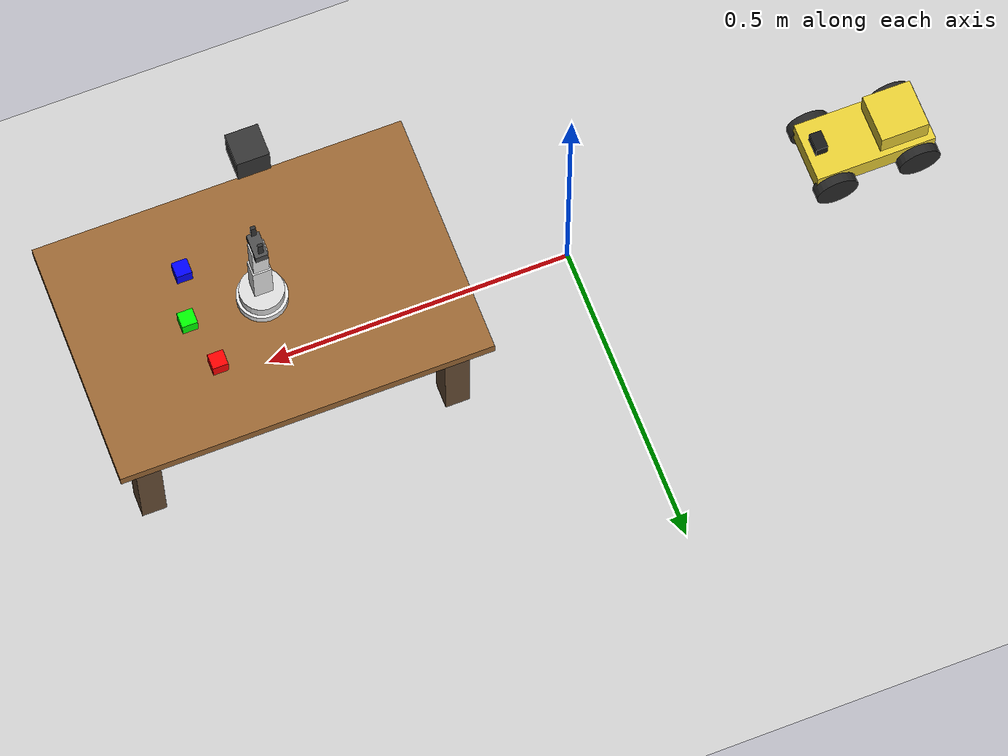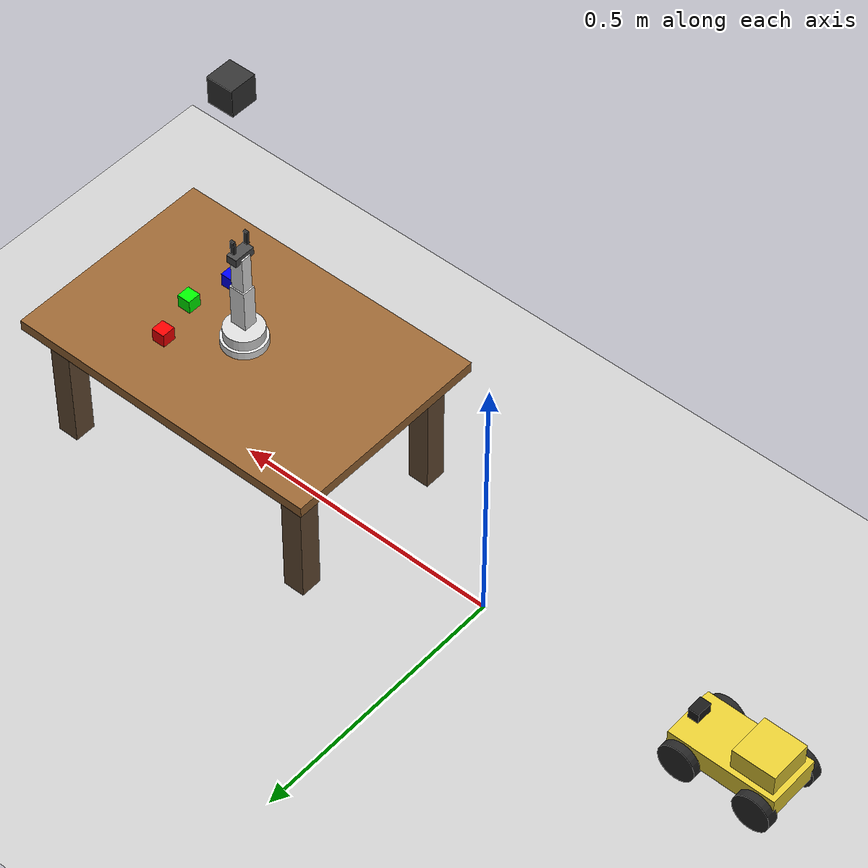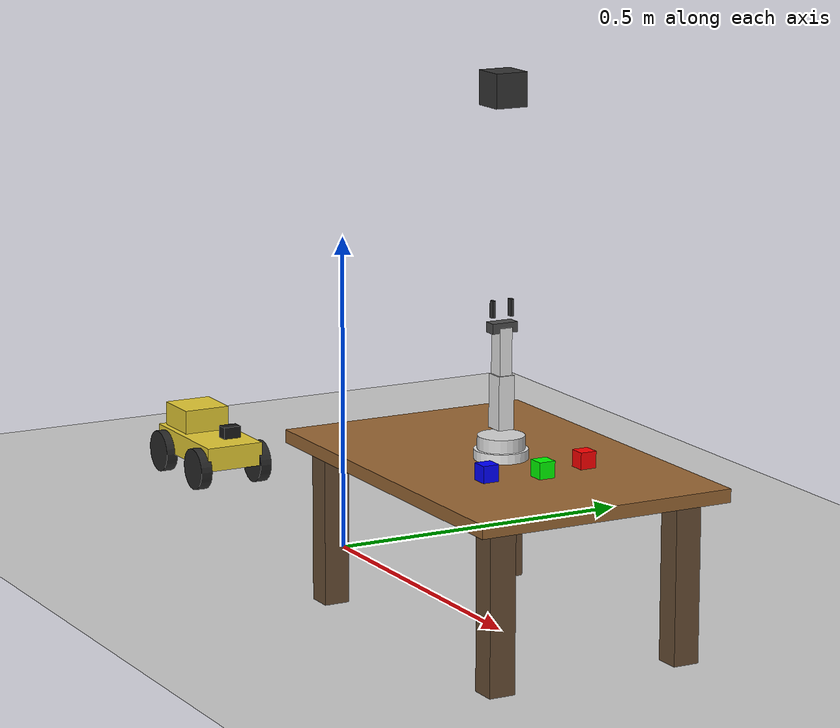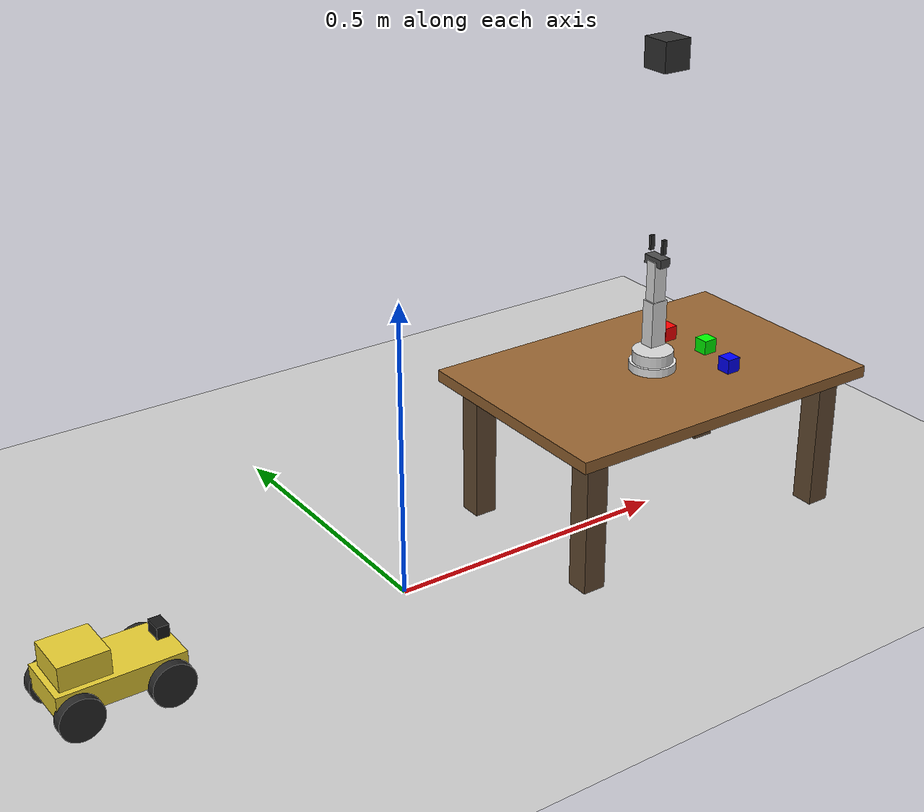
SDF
<?xml version="1.0" ?>
<sdf version="1.8">
  <world name="cyberbrick_world">

    <!-- Physics -->
    <physics name="1ms" type="ignored">
      <max_step_size>0.001</max_step_size>
      <real_time_factor>1.0</real_time_factor>
    </physics>

    <!-- Required plugins for Ignition Gazebo -->
    <plugin filename="ignition-gazebo-physics-system" name="ignition::gazebo::systems::Physics"/>
    <plugin filename="ignition-gazebo-user-commands-system" name="ignition::gazebo::systems::UserCommands"/>
    <plugin filename="ignition-gazebo-scene-broadcaster-system" name="ignition::gazebo::systems::SceneBroadcaster"/>
    <plugin filename="ignition-gazebo-sensors-system" name="ignition::gazebo::systems::Sensors">
      <render_engine>ogre2</render_engine>
    </plugin>

    <!-- Lighting -->
    <light type="directional" name="sun">
      <cast_shadows>true</cast_shadows>
      <pose>0 0 10 0 0 0</pose>
      <diffuse>0.8 0.8 0.8 1</diffuse>
      <specular>0.2 0.2 0.2 1</specular>
      <attenuation>
        <range>1000</range>
        <constant>0.9</constant>
        <linear>0.01</linear>
        <quadratic>0.001</quadratic>
      </attenuation>
      <direction>-0.5 0.1 -0.9</direction>
    </light>

    <!-- Ground plane -->
    <model name="ground_plane">
      <static>true</static>
      <link name="link">
        <collision name="collision">
          <geometry>
            <plane>
              <normal>0 0 1</normal>
              <size>10 10</size>
            </plane>
          </geometry>
        </collision>
        <visual name="visual">
          <geometry>
            <plane>
              <normal>0 0 1</normal>
              <size>10 10</size>
            </plane>
          </geometry>
          <material>
            <ambient>0.8 0.8 0.8 1</ambient>
            <diffuse>0.8 0.8 0.8 1</diffuse>
          </material>
        </visual>
      </link>
    </model>

    <!-- Table for objects -->
    <model name="table">
      <static>true</static>
      <pose>0.5 0 0.25 0 0 0</pose>
      <link name="link">
        <collision name="surface">
          <geometry>
            <box>
              <size>0.6 0.4 0.02</size>
            </box>
          </geometry>
        </collision>
        <visual name="surface">
          <geometry>
            <box>
              <size>0.6 0.4 0.02</size>
            </box>
          </geometry>
          <material>
            <ambient>0.6 0.4 0.2 1</ambient>
            <diffuse>0.6 0.4 0.2 1</diffuse>
          </material>
        </visual>
        <!-- Table legs -->
        <collision name="leg1">
          <pose>0.25 0.15 -0.125 0 0 0</pose>
          <geometry><box><size>0.04 0.04 0.25</size></box></geometry>
        </collision>
        <visual name="leg1">
          <pose>0.25 0.15 -0.125 0 0 0</pose>
          <geometry><box><size>0.04 0.04 0.25</size></box></geometry>
          <material><ambient>0.4 0.3 0.2 1</ambient><diffuse>0.4 0.3 0.2 1</diffuse></material>
        </visual>
        <collision name="leg2">
          <pose>-0.25 0.15 -0.125 0 0 0</pose>
          <geometry><box><size>0.04 0.04 0.25</size></box></geometry>
        </collision>
        <visual name="leg2">
          <pose>-0.25 0.15 -0.125 0 0 0</pose>
          <geometry><box><size>0.04 0.04 0.25</size></box></geometry>
          <material><ambient>0.4 0.3 0.2 1</ambient><diffuse>0.4 0.3 0.2 1</diffuse></material>
        </visual>
        <collision name="leg3">
          <pose>0.25 -0.15 -0.125 0 0 0</pose>
          <geometry><box><size>0.04 0.04 0.25</size></box></geometry>
        </collision>
        <visual name="leg3">
          <pose>0.25 -0.15 -0.125 0 0 0</pose>
          <geometry><box><size>0.04 0.04 0.25</size></box></geometry>
          <material><ambient>0.4 0.3 0.2 1</ambient><diffuse>0.4 0.3 0.2 1</diffuse></material>
        </visual>
        <collision name="leg4">
          <pose>-0.25 -0.15 -0.125 0 0 0</pose>
          <geometry><box><size>0.04 0.04 0.25</size></box></geometry>
        </collision>
        <visual name="leg4">
          <pose>-0.25 -0.15 -0.125 0 0 0</pose>
          <geometry><box><size>0.04 0.04 0.25</size></box></geometry>
          <material><ambient>0.4 0.3 0.2 1</ambient><diffuse>0.4 0.3 0.2 1</diffuse></material>
        </visual>
      </link>
    </model>

    <!-- Red cube (target object) - positioned within arm reach -->
    <model name="red_cube">
      <pose>0.6 0.08 0.2725 0 0 0</pose>
      <link name="link">
        <inertial>
          <mass>0.05</mass>
          <inertia>
            <ixx>0.0001</ixx>
            <iyy>0.0001</iyy>
            <izz>0.0001</izz>
          </inertia>
        </inertial>
        <collision name="collision">
          <geometry>
            <box>
              <size>0.025 0.025 0.025</size>
            </box>
          </geometry>
        </collision>
        <visual name="visual">
          <geometry>
            <box>
              <size>0.025 0.025 0.025</size>
            </box>
          </geometry>
          <material>
            <ambient>1 0 0 1</ambient>
            <diffuse>1 0 0 1</diffuse>
          </material>
        </visual>
      </link>
    </model>

    <!-- Blue cube - positioned within arm reach -->
    <model name="blue_cube">
      <pose>0.6 -0.08 0.2725 0 0 0</pose>
      <link name="link">
        <inertial>
          <mass>0.05</mass>
          <inertia>
            <ixx>0.0001</ixx>
            <iyy>0.0001</iyy>
            <izz>0.0001</izz>
          </inertia>
        </inertial>
        <collision name="collision">
          <geometry>
            <box>
              <size>0.025 0.025 0.025</size>
            </box>
          </geometry>
        </collision>
        <visual name="visual">
          <geometry>
            <box>
              <size>0.025 0.025 0.025</size>
            </box>
          </geometry>
          <material>
            <ambient>0 0 1 1</ambient>
            <diffuse>0 0 1 1</diffuse>
          </material>
        </visual>
      </link>
    </model>

    <!-- Green cube - positioned within arm reach -->
    <model name="green_cube">
      <pose>0.62 0.0 0.2725 0 0 0</pose>
      <link name="link">
        <inertial>
          <mass>0.05</mass>
          <inertia>
            <ixx>0.0001</ixx>
            <iyy>0.0001</iyy>
            <izz>0.0001</izz>
          </inertia>
        </inertial>
        <collision name="collision">
          <geometry>
            <box>
              <size>0.025 0.025 0.025</size>
            </box>
          </geometry>
        </collision>
        <visual name="visual">
          <geometry>
            <box>
              <size>0.025 0.025 0.025</size>
            </box>
          </geometry>
          <material>
            <ambient>0 1 0 1</ambient>
            <diffuse>0 1 0 1</diffuse>
          </material>
        </visual>
      </link>
    </model>

    <!-- L-ONE Robotic Arm (4 DOF + Gripper) -->
    <!-- Based on real L-ONE CyberBrick arm: base rotation + shoulder + elbow + gripper -->
    <model name="l_one_arm">
      <static>false</static>
      <pose>0.5 0 0.26 0 0 0</pose>

      <!-- Base pedestal (fixed to table) -->
      <link name="base_pedestal">
        <inertial>
          <mass>0.3</mass>
          <inertia><ixx>0.0002</ixx><iyy>0.0002</iyy><izz>0.0002</izz></inertia>
        </inertial>
        <collision name="collision">
          <geometry><cylinder><radius>0.04</radius><length>0.03</length></cylinder></geometry>
        </collision>
        <visual name="visual">
          <geometry><cylinder><radius>0.04</radius><length>0.03</length></cylinder></geometry>
          <material><ambient>0.9 0.9 0.9 1</ambient><diffuse>0.9 0.9 0.9 1</diffuse></material>
        </visual>
      </link>

      <!-- Turntable (rotates on base) -->
      <link name="turntable">
        <pose relative_to="base_pedestal">0 0 0.025 0 0 0</pose>
        <inertial>
          <mass>0.15</mass>
          <inertia><ixx>0.0001</ixx><iyy>0.0001</iyy><izz>0.0001</izz></inertia>
        </inertial>
        <collision name="collision">
          <geometry><cylinder><radius>0.035</radius><length>0.02</length></cylinder></geometry>
        </collision>
        <visual name="visual">
          <geometry><cylinder><radius>0.035</radius><length>0.02</length></cylinder></geometry>
          <material><ambient>0.85 0.85 0.85 1</ambient><diffuse>0.85 0.85 0.85 1</diffuse></material>
        </visual>
      </link>

      <!-- Lower arm (shoulder joint) -->
      <link name="lower_arm">
        <pose relative_to="turntable">0 0 0.02 0 0 0</pose>
        <inertial>
          <mass>0.1</mass>
          <inertia><ixx>0.0001</ixx><iyy>0.0001</iyy><izz>0.0001</izz></inertia>
        </inertial>
        <collision name="collision">
          <pose>0 0 0.04 0 0 0</pose>
          <geometry><box><size>0.03 0.025 0.08</size></box></geometry>
        </collision>
        <visual name="visual">
          <pose>0 0 0.04 0 0 0</pose>
          <geometry><box><size>0.03 0.025 0.08</size></box></geometry>
          <material><ambient>0.9 0.9 0.9 1</ambient><diffuse>0.9 0.9 0.9 1</diffuse></material>
        </visual>
      </link>

      <!-- Upper arm (elbow joint) -->
      <link name="upper_arm">
        <pose relative_to="lower_arm">0 0 0.08 0 0 0</pose>
        <inertial>
          <mass>0.08</mass>
          <inertia><ixx>0.00008</ixx><iyy>0.00008</iyy><izz>0.00008</izz></inertia>
        </inertial>
        <collision name="collision">
          <pose>0 0 0.035 0 0 0</pose>
          <geometry><box><size>0.025 0.02 0.07</size></box></geometry>
        </collision>
        <visual name="visual">
          <pose>0 0 0.035 0 0 0</pose>
          <geometry><box><size>0.025 0.02 0.07</size></box></geometry>
          <material><ambient>0.9 0.9 0.9 1</ambient><diffuse>0.9 0.9 0.9 1</diffuse></material>
        </visual>
      </link>

      <!-- Gripper base -->
      <link name="gripper_base">
        <pose relative_to="upper_arm">0 0 0.07 0 0 0</pose>
        <inertial>
          <mass>0.03</mass>
          <inertia><ixx>0.00002</ixx><iyy>0.00002</iyy><izz>0.00002</izz></inertia>
        </inertial>
        <collision name="collision">
          <geometry><box><size>0.02 0.04 0.015</size></box></geometry>
        </collision>
        <visual name="visual">
          <geometry><box><size>0.02 0.04 0.015</size></box></geometry>
          <material><ambient>0.3 0.3 0.3 1</ambient><diffuse>0.3 0.3 0.3 1</diffuse></material>
        </visual>
      </link>

      <!-- Left gripper finger -->
      <link name="gripper_left">
        <pose relative_to="gripper_base">0 0.015 0.015 0 0 0</pose>
        <inertial>
          <mass>0.01</mass>
          <inertia><ixx>0.000001</ixx><iyy>0.000001</iyy><izz>0.000001</izz></inertia>
        </inertial>
        <collision name="collision">
          <pose>0 0 0.012 0 0 0</pose>
          <geometry><box><size>0.008 0.005 0.025</size></box></geometry>
        </collision>
        <visual name="visual">
          <pose>0 0 0.012 0 0 0</pose>
          <geometry><box><size>0.008 0.005 0.025</size></box></geometry>
          <material><ambient>0.2 0.2 0.2 1</ambient><diffuse>0.2 0.2 0.2 1</diffuse></material>
        </visual>
      </link>

      <!-- Right gripper finger -->
      <link name="gripper_right">
        <pose relative_to="gripper_base">0 -0.015 0.015 0 0 0</pose>
        <inertial>
          <mass>0.01</mass>
          <inertia><ixx>0.000001</ixx><iyy>0.000001</iyy><izz>0.000001</izz></inertia>
        </inertial>
        <collision name="collision">
          <pose>0 0 0.012 0 0 0</pose>
          <geometry><box><size>0.008 0.005 0.025</size></box></geometry>
        </collision>
        <visual name="visual">
          <pose>0 0 0.012 0 0 0</pose>
          <geometry><box><size>0.008 0.005 0.025</size></box></geometry>
          <material><ambient>0.2 0.2 0.2 1</ambient><diffuse>0.2 0.2 0.2 1</diffuse></material>
        </visual>
      </link>

      <!-- Fix base to world (on table) -->
      <joint name="arm_fixed" type="fixed">
        <parent>world</parent>
        <child>base_pedestal</child>
      </joint>

      <!-- Joint 1: Base rotation (servo 180°) -->
      <joint name="base_rotation" type="revolute">
        <parent>base_pedestal</parent>
        <child>turntable</child>
        <axis>
          <xyz>0 0 1</xyz>
          <limit>
            <lower>-3.14159</lower>
            <upper>3.14159</upper>
            <velocity>1.0</velocity>
            <effort>10</effort>
          </limit>
          <dynamics><damping>2.0</damping><friction>0.5</friction></dynamics>
        </axis>
      </joint>

      <!-- Joint 2: Shoulder (servo 360° velocity with worm gear) -->
      <joint name="shoulder" type="revolute">
        <parent>turntable</parent>
        <child>lower_arm</child>
        <axis>
          <xyz>0 1 0</xyz>
          <limit>
            <lower>-0.5</lower>
            <upper>1.57</upper>
            <velocity>0.8</velocity>
            <effort>10</effort>
          </limit>
          <dynamics><damping>2.0</damping><friction>0.5</friction></dynamics>
        </axis>
      </joint>

      <!-- Joint 3: Elbow (servo 360° velocity with worm gear) -->
      <joint name="elbow" type="revolute">
        <parent>lower_arm</parent>
        <child>upper_arm</child>
        <axis>
          <xyz>0 1 0</xyz>
          <limit>
            <lower>-1.57</lower>
            <upper>1.57</upper>
            <velocity>0.8</velocity>
            <effort>10</effort>
          </limit>
          <dynamics><damping>2.0</damping><friction>0.5</friction></dynamics>
        </axis>
      </joint>

      <!-- Joint 4: Gripper mount (fixed) -->
      <joint name="gripper_mount" type="fixed">
        <parent>upper_arm</parent>
        <child>gripper_base</child>
      </joint>

      <!-- Joint 5: Left gripper finger (prismatic) -->
      <joint name="gripper_left_joint" type="prismatic">
        <parent>gripper_base</parent>
        <child>gripper_left</child>
        <axis>
          <xyz>0 1 0</xyz>
          <limit><lower>-0.01</lower><upper>0.005</upper></limit>
          <dynamics><damping>0.1</damping></dynamics>
        </axis>
      </joint>

      <!-- Joint 6: Right gripper finger (prismatic, mirrored) -->
      <joint name="gripper_right_joint" type="prismatic">
        <parent>gripper_base</parent>
        <child>gripper_right</child>
        <axis>
          <xyz>0 -1 0</xyz>
          <limit><lower>-0.01</lower><upper>0.005</upper></limit>
          <dynamics><damping>0.1</damping></dynamics>
        </axis>
      </joint>

      <!-- Joint Position Controllers -->
      <!-- Base rotation (position control - servo 180°) -->
      <plugin filename="libignition-gazebo-joint-position-controller-system.so"
              name="ignition::gazebo::systems::JointPositionController">
        <joint_name>base_rotation</joint_name>
        <topic>/arm/base</topic>
        <p_gain>5</p_gain>
        <i_gain>0.01</i_gain>
        <d_gain>2.0</d_gain>
      </plugin>

      <!-- Shoulder (position control) - higher gains to overcome gravity -->
      <plugin filename="libignition-gazebo-joint-position-controller-system.so"
              name="ignition::gazebo::systems::JointPositionController">
        <joint_name>shoulder</joint_name>
        <topic>/arm/shoulder</topic>
        <p_gain>50</p_gain>
        <i_gain>5.0</i_gain>
        <d_gain>10.0</d_gain>
      </plugin>

      <!-- Elbow (position control) -->
      <plugin filename="libignition-gazebo-joint-position-controller-system.so"
              name="ignition::gazebo::systems::JointPositionController">
        <joint_name>elbow</joint_name>
        <topic>/arm/elbow</topic>
        <p_gain>6</p_gain>
        <i_gain>0.01</i_gain>
        <d_gain>2.5</d_gain>
      </plugin>

      <!-- Gripper (position control - separate topics for each finger) -->
      <plugin filename="libignition-gazebo-joint-position-controller-system.so"
              name="ignition::gazebo::systems::JointPositionController">
        <joint_name>gripper_left_joint</joint_name>
        <topic>/arm/gripper_left</topic>
        <p_gain>20</p_gain>
        <i_gain>0.01</i_gain>
        <d_gain>1.0</d_gain>
      </plugin>
      <plugin filename="libignition-gazebo-joint-position-controller-system.so"
              name="ignition::gazebo::systems::JointPositionController">
        <joint_name>gripper_right_joint</joint_name>
        <topic>/arm/gripper_right</topic>
        <p_gain>20</p_gain>
        <i_gain>0.01</i_gain>
        <d_gain>1.0</d_gain>
      </plugin>

    </model>

    <!-- CyberBrick Truck (Ackermann Steering) -->
    <!-- Based on real CyberBrick truck: rear drive + front steering -->
    <model name="cyberbrick_truck">
      <pose>-0.5 0 0.035 0 0 0</pose>

      <!-- Chassis -->
      <link name="chassis">
        <inertial>
          <mass>0.8</mass>
          <inertia>
            <ixx>0.002</ixx><ixy>0</ixy><ixz>0</ixz>
            <iyy>0.004</iyy><iyz>0</iyz>
            <izz>0.004</izz>
          </inertia>
        </inertial>
        <!-- Main body -->
        <collision name="body_collision">
          <pose>0 0 0.02 0 0 0</pose>
          <geometry><box><size>0.20 0.10 0.04</size></box></geometry>
        </collision>
        <visual name="body_visual">
          <pose>0 0 0.02 0 0 0</pose>
          <geometry><box><size>0.20 0.10 0.04</size></box></geometry>
          <material><ambient>0.9 0.8 0.2 1</ambient><diffuse>0.9 0.8 0.2 1</diffuse></material>
        </visual>
        <!-- Cabin -->
        <collision name="cabin_collision">
          <pose>-0.05 0 0.06 0 0 0</pose>
          <geometry><box><size>0.08 0.08 0.04</size></box></geometry>
        </collision>
        <visual name="cabin_visual">
          <pose>-0.05 0 0.06 0 0 0</pose>
          <geometry><box><size>0.08 0.08 0.04</size></box></geometry>
          <material><ambient>0.9 0.8 0.2 1</ambient><diffuse>0.9 0.8 0.2 1</diffuse></material>
        </visual>
      </link>

      <!-- Rear left wheel (driven) -->
      <link name="rear_left_wheel">
        <pose relative_to="chassis">-0.07 0.055 0 -1.5707 0 0</pose>
        <inertial>
          <mass>0.08</mass>
          <inertia><ixx>0.00005</ixx><iyy>0.00005</iyy><izz>0.00008</izz></inertia>
        </inertial>
        <collision name="collision">
          <geometry><cylinder><radius>0.035</radius><length>0.02</length></cylinder></geometry>
          <surface>
            <friction><ode><mu>1.0</mu><mu2>1.0</mu2></ode></friction>
          </surface>
        </collision>
        <visual name="visual">
          <geometry><cylinder><radius>0.035</radius><length>0.02</length></cylinder></geometry>
          <material><ambient>0.15 0.15 0.15 1</ambient><diffuse>0.15 0.15 0.15 1</diffuse></material>
        </visual>
      </link>

      <!-- Rear right wheel (driven) -->
      <link name="rear_right_wheel">
        <pose relative_to="chassis">-0.07 -0.055 0 -1.5707 0 0</pose>
        <inertial>
          <mass>0.08</mass>
          <inertia><ixx>0.00005</ixx><iyy>0.00005</iyy><izz>0.00008</izz></inertia>
        </inertial>
        <collision name="collision">
          <geometry><cylinder><radius>0.035</radius><length>0.02</length></cylinder></geometry>
          <surface>
            <friction><ode><mu>1.0</mu><mu2>1.0</mu2></ode></friction>
          </surface>
        </collision>
        <visual name="visual">
          <geometry><cylinder><radius>0.035</radius><length>0.02</length></cylinder></geometry>
          <material><ambient>0.15 0.15 0.15 1</ambient><diffuse>0.15 0.15 0.15 1</diffuse></material>
        </visual>
      </link>

      <!-- Front left steering knuckle -->
      <link name="front_left_knuckle">
        <pose relative_to="chassis">0.07 0.045 0 0 0 0</pose>
        <inertial>
          <mass>0.02</mass>
          <inertia><ixx>0.000001</ixx><iyy>0.000001</iyy><izz>0.000001</izz></inertia>
        </inertial>
        <visual name="visual">
          <geometry><cylinder><radius>0.005</radius><length>0.01</length></cylinder></geometry>
          <material><ambient>0.3 0.3 0.3 1</ambient><diffuse>0.3 0.3 0.3 1</diffuse></material>
        </visual>
      </link>

      <!-- Front left wheel -->
      <link name="front_left_wheel">
        <pose relative_to="front_left_knuckle">0 0.01 0 -1.5707 0 0</pose>
        <inertial>
          <mass>0.06</mass>
          <inertia><ixx>0.00003</ixx><iyy>0.00003</iyy><izz>0.00005</izz></inertia>
        </inertial>
        <collision name="collision">
          <geometry><cylinder><radius>0.035</radius><length>0.02</length></cylinder></geometry>
          <surface>
            <friction><ode><mu>1.0</mu><mu2>1.0</mu2></ode></friction>
          </surface>
        </collision>
        <visual name="visual">
          <geometry><cylinder><radius>0.035</radius><length>0.02</length></cylinder></geometry>
          <material><ambient>0.15 0.15 0.15 1</ambient><diffuse>0.15 0.15 0.15 1</diffuse></material>
        </visual>
      </link>

      <!-- Front right steering knuckle -->
      <link name="front_right_knuckle">
        <pose relative_to="chassis">0.07 -0.045 0 0 0 0</pose>
        <inertial>
          <mass>0.02</mass>
          <inertia><ixx>0.000001</ixx><iyy>0.000001</iyy><izz>0.000001</izz></inertia>
        </inertial>
        <visual name="visual">
          <geometry><cylinder><radius>0.005</radius><length>0.01</length></cylinder></geometry>
          <material><ambient>0.3 0.3 0.3 1</ambient><diffuse>0.3 0.3 0.3 1</diffuse></material>
        </visual>
      </link>

      <!-- Front right wheel -->
      <link name="front_right_wheel">
        <pose relative_to="front_right_knuckle">0 -0.01 0 -1.5707 0 0</pose>
        <inertial>
          <mass>0.06</mass>
          <inertia><ixx>0.00003</ixx><iyy>0.00003</iyy><izz>0.00005</izz></inertia>
        </inertial>
        <collision name="collision">
          <geometry><cylinder><radius>0.035</radius><length>0.02</length></cylinder></geometry>
          <surface>
            <friction><ode><mu>1.0</mu><mu2>1.0</mu2></ode></friction>
          </surface>
        </collision>
        <visual name="visual">
          <geometry><cylinder><radius>0.035</radius><length>0.02</length></cylinder></geometry>
          <material><ambient>0.15 0.15 0.15 1</ambient><diffuse>0.15 0.15 0.15 1</diffuse></material>
        </visual>
      </link>

      <!-- Camera link -->
      <link name="camera_link">
        <pose relative_to="chassis">0.08 0 0.06 0 0 0</pose>
        <inertial>
          <mass>0.02</mass>
          <inertia><ixx>0.00001</ixx><iyy>0.00001</iyy><izz>0.00001</izz></inertia>
        </inertial>
        <collision name="collision">
          <geometry><box><size>0.02 0.03 0.02</size></box></geometry>
        </collision>
        <visual name="visual">
          <geometry><box><size>0.02 0.03 0.02</size></box></geometry>
          <material><ambient>0.1 0.1 0.1 1</ambient><diffuse>0.1 0.1 0.1 1</diffuse></material>
        </visual>
        <sensor name="camera" type="camera">
          <always_on>true</always_on>
          <update_rate>30</update_rate>
          <camera>
            <horizontal_fov>1.047</horizontal_fov>
            <image>
              <width>640</width>
              <height>480</height>
              <format>R8G8B8</format>
            </image>
            <clip>
              <near>0.01</near>
              <far>10</far>
            </clip>
          </camera>
          <topic>/camera/image_raw</topic>
        </sensor>
      </link>

      <!-- JOINTS -->

      <!-- Rear wheel joints (driven) -->
      <joint name="rear_left_wheel_joint" type="revolute">
        <parent>chassis</parent>
        <child>rear_left_wheel</child>
        <axis>
          <xyz>0 0 1</xyz>
          <dynamics><damping>0.1</damping><friction>0.1</friction></dynamics>
        </axis>
      </joint>

      <joint name="rear_right_wheel_joint" type="revolute">
        <parent>chassis</parent>
        <child>rear_right_wheel</child>
        <axis>
          <xyz>0 0 1</xyz>
          <dynamics><damping>0.1</damping><friction>0.1</friction></dynamics>
        </axis>
      </joint>

      <!-- Front steering joints -->
      <joint name="front_left_steering_joint" type="revolute">
        <parent>chassis</parent>
        <child>front_left_knuckle</child>
        <axis>
          <xyz>0 0 1</xyz>
          <limit><lower>-0.6</lower><upper>0.6</upper></limit>
          <dynamics><damping>0.5</damping><friction>0.1</friction></dynamics>
        </axis>
      </joint>

      <joint name="front_right_steering_joint" type="revolute">
        <parent>chassis</parent>
        <child>front_right_knuckle</child>
        <axis>
          <xyz>0 0 1</xyz>
          <limit><lower>-0.6</lower><upper>0.6</upper></limit>
          <dynamics><damping>0.5</damping><friction>0.1</friction></dynamics>
        </axis>
      </joint>

      <!-- Front wheel spin joints -->
      <joint name="front_left_wheel_joint" type="revolute">
        <parent>front_left_knuckle</parent>
        <child>front_left_wheel</child>
        <axis>
          <xyz>0 0 1</xyz>
          <dynamics><damping>0.01</damping></dynamics>
        </axis>
      </joint>

      <joint name="front_right_wheel_joint" type="revolute">
        <parent>front_right_knuckle</parent>
        <child>front_right_wheel</child>
        <axis>
          <xyz>0 0 1</xyz>
          <dynamics><damping>0.01</damping></dynamics>
        </axis>
      </joint>

      <!-- Camera joint -->
      <joint name="camera_joint" type="fixed">
        <parent>chassis</parent>
        <child>camera_link</child>
      </joint>

      <!-- PLUGINS -->

      <!-- Ackermann steering plugin -->
      <plugin filename="libignition-gazebo-ackermann-steering-system.so"
              name="ignition::gazebo::systems::AckermannSteering">
        <left_joint>front_left_wheel_joint</left_joint>
        <right_joint>front_right_wheel_joint</right_joint>
        <left_steering_joint>front_left_steering_joint</left_steering_joint>
        <right_steering_joint>front_right_steering_joint</right_steering_joint>
        <wheel_separation>0.09</wheel_separation>
        <kingpin_width>0.09</kingpin_width>
        <wheel_base>0.14</wheel_base>
        <wheel_radius>0.035</wheel_radius>
        <steering_limit>0.5</steering_limit>
        <topic>/truck/cmd_vel</topic>
        <odom_topic>/truck/odom</odom_topic>
        <frame_id>odom</frame_id>
        <child_frame_id>chassis</child_frame_id>
      </plugin>

      <!-- Rear wheel drive (velocity control) -->
      <plugin filename="libignition-gazebo-joint-controller-system.so"
              name="ignition::gazebo::systems::JointController">
        <joint_name>rear_left_wheel_joint</joint_name>
        <topic>/truck/rear_left_wheel_vel</topic>
        <initial_velocity>0</initial_velocity>
      </plugin>
      <plugin filename="libignition-gazebo-joint-controller-system.so"
              name="ignition::gazebo::systems::JointController">
        <joint_name>rear_right_wheel_joint</joint_name>
        <topic>/truck/rear_right_wheel_vel</topic>
        <initial_velocity>0</initial_velocity>
      </plugin>

    </model>

    <!-- Overhead Camera (fixed, looking down at the table) -->
    <model name="overhead_camera">
      <static>true</static>
      <pose>0.5 0 0.8 3.14159 1.5707963 0</pose>  <!-- Above table, roll 180° + pitch 90° to look down at table -->
      <link name="link">
        <inertial>
          <mass>0.1</mass>
          <inertia>
            <ixx>0.0001</ixx>
            <iyy>0.0001</iyy>
            <izz>0.0001</izz>
          </inertia>
        </inertial>
        <collision name="collision">
          <geometry>
            <box>
              <size>0.05 0.05 0.05</size>
            </box>
          </geometry>
        </collision>
        <visual name="visual">
          <geometry>
            <box>
              <size>0.05 0.05 0.05</size>
            </box>
          </geometry>
          <material>
            <ambient>0.2 0.2 0.2 1</ambient>
            <diffuse>0.2 0.2 0.2 1</diffuse>
          </material>
        </visual>
        <sensor name="overhead_camera" type="camera">
          <always_on>true</always_on>
          <update_rate>10</update_rate>
          <camera>
            <horizontal_fov>1.2</horizontal_fov>
            <image>
              <width>640</width>
              <height>480</height>
              <format>R8G8B8</format>
            </image>
            <clip>
              <near>0.1</near>
              <far>10</far>
            </clip>
          </camera>
          <topic>/overhead_camera/image_raw</topic>
        </sensor>
      </link>
    </model>

  </world>
</sdf>
